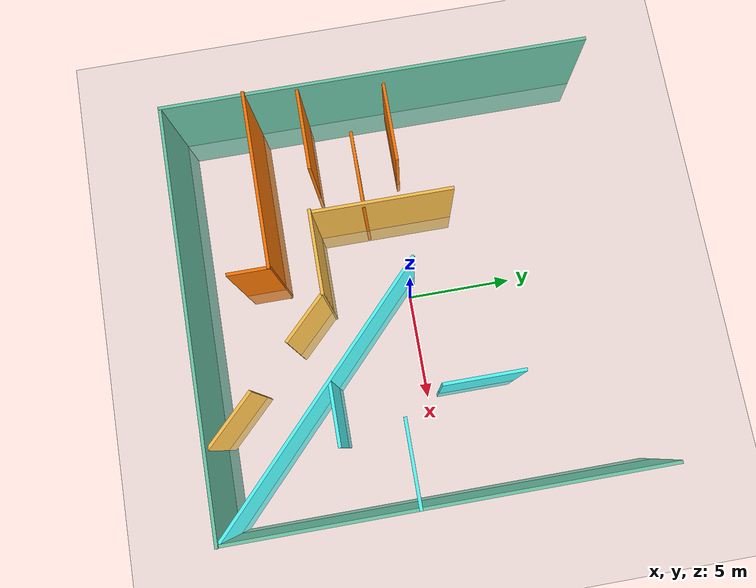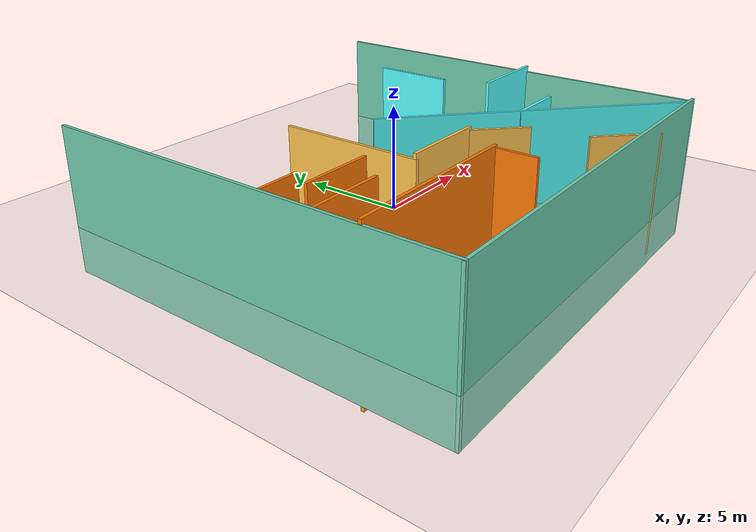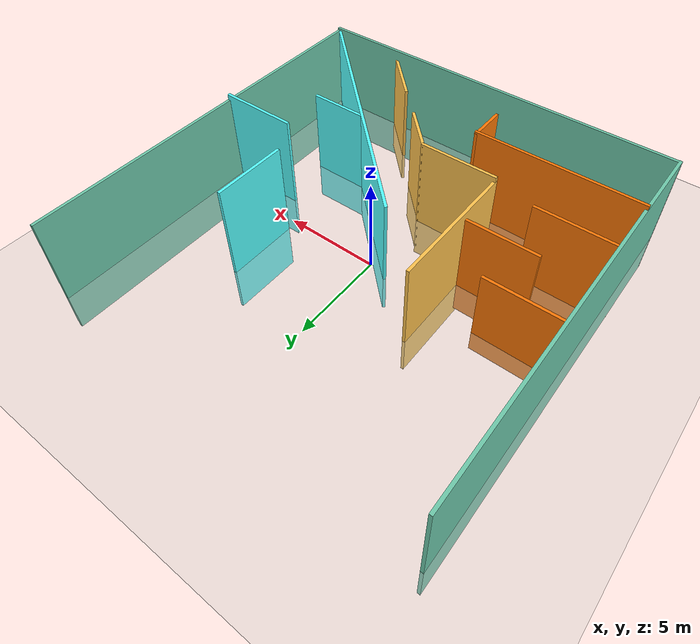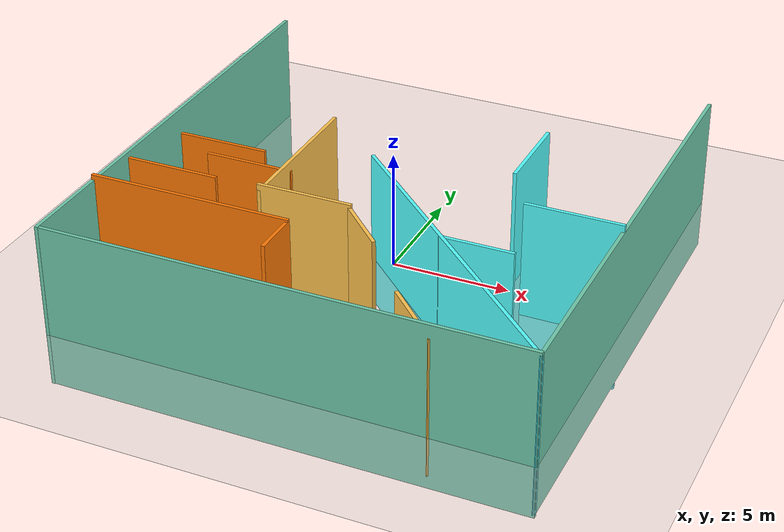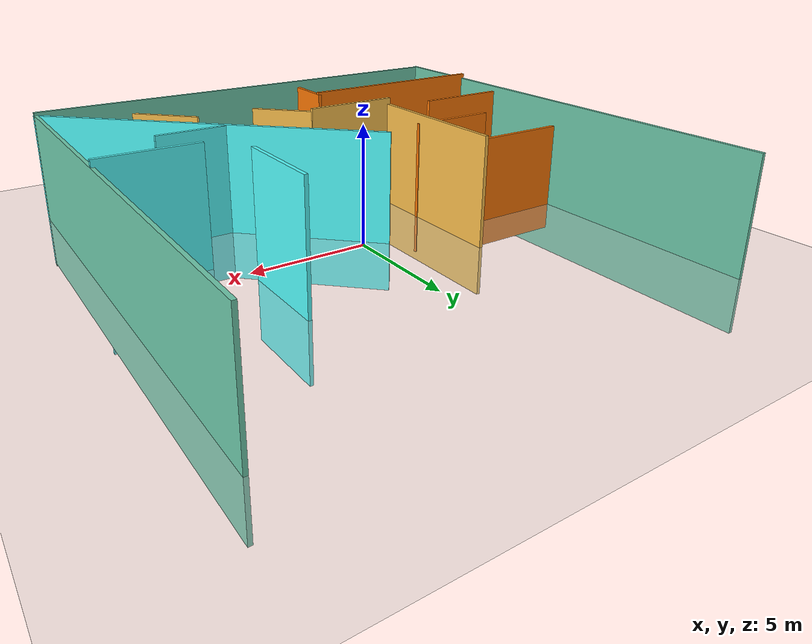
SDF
<sdf version="1.6">
 <world name="default">
  <model name="ground_plane">
   <static>1</static>
   <link name="link">
    <collision name="collision">
     <geometry><plane><normal>0 0 1</normal><size>100 100</size></plane></geometry>
     <surface><friction><ode><mu>100</mu><mu2>50</mu2></ode></friction></surface>
    </collision>
    <visual name="visual">
     <cast_shadows>0</cast_shadows>
     <geometry><plane><normal>0 0 1</normal><size>100 100</size></plane></geometry>
     <material>
      <script><uri>file://media/materials/scripts/gazebo.material</uri><name>Gazebo/Grey</name></script>
     </material>
    </visual>
   </link>
  </model>
  <model name="Maze_House">
   <link name="Wall_34">
    <pose>4.88243 2.43137 0 0 0 -1.5708</pose>
    <inertial>
     <inertia><ixx>0</ixx><ixy>0</ixy><ixz>0</ixz><iyy>0</iyy><iyz>0</iyz><izz>0</izz></inertia>
     <mass>0</mass>
    </inertial>
    <visual name="Wall_34_Visual">
     <pose>0 0 1.25 0 -0 0</pose>
     <geometry><box><size>3.75 0.15 7.57221</size></box></geometry>
     <material>
      <script><uri>file://media/materials/scripts/gazebo.material</uri><name>Gazebo/Grey</name></script>
      <ambient>0.333333 1 1 1</ambient>
      <shader type="pixel"/>
     </material>
    </visual>
    <collision name="Wall_34_Collision">
     <pose>0 0 1.25 0 -0 0</pose>
     <geometry><box><size>3.75 0.15 7.57221</size></box></geometry>
     <surface>
      <friction>
       <ode><mu>1</mu><mu2>1</mu2><fdir1>0 0 0</fdir1><slip1>0</slip1><slip2>0</slip2></ode>
       <torsional>
        <coefficient>1</coefficient>
        <patch_radius>0</patch_radius>
        <surface_radius>0</surface_radius>
        <use_patch_radius>1</use_patch_radius>
        <ode><slip>0</slip></ode>
       </torsional>
      </friction>
      <bounce><restitution_coefficient>0</restitution_coefficient><threshold>1e+06</threshold></bounce>
      <contact>
       <collide_without_contact>0</collide_without_contact>
       <collide_without_contact_bitmask>1</collide_without_contact_bitmask>
       <collide_bitmask>1</collide_bitmask>
       <ode>
        <soft_cfm>0</soft_cfm>
        <soft_erp>0.2</soft_erp>
        <kp>1e+13</kp>
        <kd>1</kd>
        <max_vel>0.01</max_vel>
        <min_depth>0</min_depth>
       </ode>
       <bullet>
        <split_impulse>1</split_impulse>
        <split_impulse_penetration_threshold>-0.01</split_impulse_penetration_threshold>
        <soft_cfm>0</soft_cfm>
        <soft_erp>0.2</soft_erp>
        <kp>1e+13</kp>
        <kd>1</kd>
       </bullet>
      </contact>
     </surface>
    </collision>
   </link>
   <link name="Wall_42">
    <pose>-7.94977 0.433564 0 0 -0 0</pose>
    <inertial>
     <inertia><ixx>0</ixx><ixy>0</ixy><ixz>0</ixz><iyy>0</iyy><iyz>0</iyz><izz>0</izz></inertia>
     <mass>0</mass>
    </inertial>
    <visual name="Wall_42_Visual">
     <pose>0 0 1.25 0 -0 0</pose>
     <geometry><box><size>4 0.15 4.86906</size></box></geometry>
     <material>
      <script><uri>file://media/materials/scripts/gazebo.material</uri><name>Gazebo/Grey</name></script>
      <ambient>0.996078 0.47451 0.0196078 1</ambient>
      <shader type="pixel"/>
     </material>
    </visual>
    <collision name="Wall_42_Collision">
     <pose>0 0 1.25 0 -0 0</pose>
     <geometry><box><size>4 0.15 4.86906</size></box></geometry>
     <surface>
      <friction>
       <ode><mu>1</mu><mu2>1</mu2><fdir1>0 0 0</fdir1><slip1>0</slip1><slip2>0</slip2></ode>
       <torsional>
        <coefficient>1</coefficient>
        <patch_radius>0</patch_radius>
        <surface_radius>0</surface_radius>
        <use_patch_radius>1</use_patch_radius>
        <ode><slip>0</slip></ode>
       </torsional>
      </friction>
      <bounce><restitution_coefficient>0</restitution_coefficient><threshold>1e+06</threshold></bounce>
      <contact>
       <collide_without_contact>0</collide_without_contact>
       <collide_without_contact_bitmask>1</collide_without_contact_bitmask>
       <collide_bitmask>1</collide_bitmask>
       <ode>
        <soft_cfm>0</soft_cfm>
        <soft_erp>0.2</soft_erp>
        <kp>1e+13</kp>
        <kd>1</kd>
        <max_vel>0.01</max_vel>
        <min_depth>0</min_depth>
       </ode>
       <bullet>
        <split_impulse>1</split_impulse>
        <split_impulse_penetration_threshold>-0.01</split_impulse_penetration_threshold>
        <soft_cfm>0</soft_cfm>
        <soft_erp>0.2</soft_erp>
        <kp>1e+13</kp>
        <kd>1</kd>
       </bullet>
      </contact>
     </surface>
    </collision>
   </link>
   <link name="Wall_44">
    <pose>-3.86803 -0.646043 0 0 0 -1.5708</pose>
    <inertial>
     <inertia><ixx>0</ixx><ixy>0</ixy><ixz>0</ixz><iyy>0</iyy><iyz>0</iyz><izz>0</izz></inertia>
     <mass>0</mass>
    </inertial>
    <visual name="Wall_44_Visual">
     <pose>0 0 1.25 0 -0 0</pose>
     <geometry><box><size>6.75 0.15 6.70931</size></box></geometry>
     <material>
      <script><uri>file://media/materials/scripts/gazebo.material</uri><name>Gazebo/Grey</name></script>
      <ambient>1 0.764706 0.305882 1</ambient>
      <shader type="pixel"/>
     </material>
    </visual>
    <collision name="Wall_44_Collision">
     <pose>0 0 1.25 0 -0 0</pose>
     <geometry><box><size>6.75 0.15 6.70931</size></box></geometry>
     <surface>
      <friction>
       <ode><mu>1</mu><mu2>1</mu2><fdir1>0 0 0</fdir1><slip1>0</slip1><slip2>0</slip2></ode>
       <torsional>
        <coefficient>1</coefficient>
        <patch_radius>0</patch_radius>
        <surface_radius>0</surface_radius>
        <use_patch_radius>1</use_patch_radius>
        <ode><slip>0</slip></ode>
       </torsional>
      </friction>
      <bounce><restitution_coefficient>0</restitution_coefficient><threshold>1e+06</threshold></bounce>
      <contact>
       <collide_without_contact>0</collide_without_contact>
       <collide_without_contact_bitmask>1</collide_without_contact_bitmask>
       <collide_bitmask>1</collide_bitmask>
       <ode>
        <soft_cfm>0</soft_cfm>
        <soft_erp>0.2</soft_erp>
        <kp>1e+13</kp>
        <kd>1</kd>
        <max_vel>0.01</max_vel>
        <min_depth>0</min_depth>
       </ode>
       <bullet>
        <split_impulse>1</split_impulse>
        <split_impulse_penetration_threshold>-0.01</split_impulse_penetration_threshold>
        <soft_cfm>0</soft_cfm>
        <soft_erp>0.2</soft_erp>
        <kp>1e+13</kp>
        <kd>1</kd>
       </bullet>
      </contact>
     </surface>
    </collision>
   </link>
   <link name="Wall_46">
    <pose>-5.63157 -1.49524 0 0 -0 3.14159</pose>
    <inertial>
     <inertia><ixx>0</ixx><ixy>0</ixy><ixz>0</ixz><iyy>0</iyy><iyz>0</iyz><izz>0</izz></inertia>
     <mass>0</mass>
    </inertial>
    <visual name="Wall_46_Visual">
     <pose>0 0 1.25 0 -0 0</pose>
     <geometry><box><size>3.75 0.15 5.92378</size></box></geometry>
     <material>
      <script><uri>file://media/materials/scripts/gazebo.material</uri><name>Gazebo/Grey</name></script>
      <ambient>0.996078 0.47451 0.0196078 1</ambient>
      <shader type="pixel"/>
     </material>
    </visual>
    <collision name="Wall_46_Collision">
     <pose>0 0 1.25 0 -0 0</pose>
     <geometry><box><size>3.75 0.15 5.92378</size></box></geometry>
     <surface>
      <friction>
       <ode><mu>1</mu><mu2>1</mu2><fdir1>0 0 0</fdir1><slip1>0</slip1><slip2>0</slip2></ode>
       <torsional>
        <coefficient>1</coefficient>
        <patch_radius>0</patch_radius>
        <surface_radius>0</surface_radius>
        <use_patch_radius>1</use_patch_radius>
        <ode><slip>0</slip></ode>
       </torsional>
      </friction>
      <bounce><restitution_coefficient>0</restitution_coefficient><threshold>1e+06</threshold></bounce>
      <contact>
       <collide_without_contact>0</collide_without_contact>
       <collide_without_contact_bitmask>1</collide_without_contact_bitmask>
       <collide_bitmask>1</collide_bitmask>
       <ode>
        <soft_cfm>0</soft_cfm>
        <soft_erp>0.2</soft_erp>
        <kp>1e+13</kp>
        <kd>1</kd>
        <max_vel>0.01</max_vel>
        <min_depth>0</min_depth>
       </ode>
       <bullet>
        <split_impulse>1</split_impulse>
        <split_impulse_penetration_threshold>-0.01</split_impulse_penetration_threshold>
        <soft_cfm>0</soft_cfm>
        <soft_erp>0.2</soft_erp>
        <kp>1e+13</kp>
        <kd>1</kd>
       </bullet>
      </contact>
     </surface>
    </collision>
   </link>
   <link name="Wall_50">
    <pose>-7.9363 -3.64872 0 0 -0 0</pose>
    <inertial>
     <inertia><ixx>0</ixx><ixy>0</ixy><ixz>0</ixz><iyy>0</iyy><iyz>0</iyz><izz>0</izz></inertia>
     <mass>0</mass>
    </inertial>
    <visual name="Wall_50_Visual">
     <pose>0 0 1.25 0 -0 0</pose>
     <geometry><box><size>4 0.15 6.57139</size></box></geometry>
     <material>
      <script><uri>file://media/materials/scripts/gazebo.material</uri><name>Gazebo/Grey</name></script>
      <ambient>0.996078 0.47451 0.0196078 1</ambient>
      <shader type="pixel"/>
     </material>
    </visual>
    <collision name="Wall_50_Collision">
     <pose>0 0 1.25 0 -0 0</pose>
     <geometry><box><size>4 0.15 6.57139</size></box></geometry>
     <surface>
      <friction>
       <ode><mu>1</mu><mu2>1</mu2><fdir1>0 0 0</fdir1><slip1>0</slip1><slip2>0</slip2></ode>
       <torsional>
        <coefficient>1</coefficient>
        <patch_radius>0</patch_radius>
        <surface_radius>0</surface_radius>
        <use_patch_radius>1</use_patch_radius>
        <ode><slip>0</slip></ode>
       </torsional>
      </friction>
      <bounce><restitution_coefficient>0</restitution_coefficient><threshold>1e+06</threshold></bounce>
      <contact>
       <collide_without_contact>0</collide_without_contact>
       <collide_without_contact_bitmask>1</collide_without_contact_bitmask>
       <collide_bitmask>1</collide_bitmask>
       <ode>
        <soft_cfm>0</soft_cfm>
        <soft_erp>0.2</soft_erp>
        <kp>1e+13</kp>
        <kd>1</kd>
        <max_vel>0.01</max_vel>
        <min_depth>0</min_depth>
       </ode>
       <bullet>
        <split_impulse>1</split_impulse>
        <split_impulse_penetration_threshold>-0.01</split_impulse_penetration_threshold>
        <soft_cfm>0</soft_cfm>
        <soft_erp>0.2</soft_erp>
        <kp>1e+13</kp>
        <kd>1</kd>
       </bullet>
      </contact>
     </surface>
    </collision>
   </link>
   <link name="Wall_52">
    <pose>-1.94303 -3.94604 0 0 -0 0</pose>
    <inertial>
     <inertia><ixx>0</ixx><ixy>0</ixy><ixz>0</ixz><iyy>0</iyy><iyz>0</iyz><izz>0</izz></inertia>
     <mass>0</mass>
    </inertial>
    <visual name="Wall_52_Visual">
     <pose>0 0 1.25 0 -0 0</pose>
     <geometry><box><size>4 0.15 7.23007</size></box></geometry>
     <material>
      <script><uri>file://media/materials/scripts/gazebo.material</uri><name>Gazebo/Grey</name></script>
      <ambient>1 0.764706 0.305882 1</ambient>
      <shader type="pixel"/>
     </material>
    </visual>
    <collision name="Wall_52_Collision">
     <pose>0 0 1.25 0 -0 0</pose>
     <geometry><box><size>4 0.15 7.23007</size></box></geometry>
     <surface>
      <friction>
       <ode><mu>1</mu><mu2>1</mu2><fdir1>0 0 0</fdir1><slip1>0</slip1><slip2>0</slip2></ode>
       <torsional>
        <coefficient>1</coefficient>
        <patch_radius>0</patch_radius>
        <surface_radius>0</surface_radius>
        <use_patch_radius>1</use_patch_radius>
        <ode><slip>0</slip></ode>
       </torsional>
      </friction>
      <bounce><restitution_coefficient>0</restitution_coefficient><threshold>1e+06</threshold></bounce>
      <contact>
       <collide_without_contact>0</collide_without_contact>
       <collide_without_contact_bitmask>1</collide_without_contact_bitmask>
       <collide_bitmask>1</collide_bitmask>
       <ode>
        <soft_cfm>0</soft_cfm>
        <soft_erp>0.2</soft_erp>
        <kp>1e+13</kp>
        <kd>1</kd>
        <max_vel>0.01</max_vel>
        <min_depth>0</min_depth>
       </ode>
       <bullet>
        <split_impulse>1</split_impulse>
        <split_impulse_penetration_threshold>-0.01</split_impulse_penetration_threshold>
        <soft_cfm>0</soft_cfm>
        <soft_erp>0.2</soft_erp>
        <kp>1e+13</kp>
        <kd>1</kd>
       </bullet>
      </contact>
     </surface>
    </collision>
   </link>
   <link name="Wall_54">
    <pose>-5.74783 -6.10984 0 0 -0 0</pose>
    <inertial>
     <inertia><ixx>0</ixx><ixy>0</ixy><ixz>0</ixz><iyy>0</iyy><iyz>0</iyz><izz>0</izz></inertia>
     <mass>0</mass>
    </inertial>
    <visual name="Wall_54_Visual">
     <pose>0 0 1.25 0 -0 0</pose>
     <geometry><box><size>8.5 0.15 7.4864</size></box></geometry>
     <material>
      <script><uri>file://media/materials/scripts/gazebo.material</uri><name>Gazebo/Grey</name></script>
      <ambient>0.996078 0.47451 0.0196078 1</ambient>
      <shader type="pixel"/>
     </material>
    </visual>
    <collision name="Wall_54_Collision">
     <pose>0 0 1.25 0 -0 0</pose>
     <geometry><box><size>8.5 0.15 7.4864</size></box></geometry>
     <surface>
      <friction>
       <ode><mu>1</mu><mu2>1</mu2><fdir1>0 0 0</fdir1><slip1>0</slip1><slip2>0</slip2></ode>
       <torsional>
        <coefficient>1</coefficient>
        <patch_radius>0</patch_radius>
        <surface_radius>0</surface_radius>
        <use_patch_radius>1</use_patch_radius>
        <ode><slip>0</slip></ode>
       </torsional>
      </friction>
      <bounce><restitution_coefficient>0</restitution_coefficient><threshold>1e+06</threshold></bounce>
      <contact>
       <collide_without_contact>0</collide_without_contact>
       <collide_without_contact_bitmask>1</collide_without_contact_bitmask>
       <collide_bitmask>1</collide_bitmask>
       <ode>
        <soft_cfm>0</soft_cfm>
        <soft_erp>0.2</soft_erp>
        <kp>1e+13</kp>
        <kd>1</kd>
        <max_vel>0.01</max_vel>
        <min_depth>0</min_depth>
       </ode>
       <bullet>
        <split_impulse>1</split_impulse>
        <split_impulse_penetration_threshold>-0.01</split_impulse_penetration_threshold>
        <soft_cfm>0</soft_cfm>
        <soft_erp>0.2</soft_erp>
        <kp>1e+13</kp>
        <kd>1</kd>
       </bullet>
      </contact>
     </surface>
    </collision>
   </link>
   <link name="Wall_56">
    <pose>-1.57283 -7.03484 0 0 0 -1.5708</pose>
    <inertial>
     <inertia><ixx>0</ixx><ixy>0</ixy><ixz>0</ixz><iyy>0</iyy><iyz>0</iyz><izz>0</izz></inertia>
     <mass>0</mass>
    </inertial>
    <visual name="Wall_56_Visual">
     <pose>0 0 1.25 0 -0 0</pose>
     <geometry><box><size>2 0.15 7.28883</size></box></geometry>
     <material>
      <script><uri>file://media/materials/scripts/gazebo.material</uri><name>Gazebo/Grey</name></script>
      <ambient>0.996078 0.47451 0.0196078 1</ambient>
      <shader type="pixel"/>
     </material>
    </visual>
    <collision name="Wall_56_Collision">
     <pose>0 0 1.25 0 -0 0</pose>
     <geometry><box><size>2 0.15 7.28883</size></box></geometry>
     <surface>
      <friction>
       <ode><mu>1</mu><mu2>1</mu2><fdir1>0 0 0</fdir1><slip1>0</slip1><slip2>0</slip2></ode>
       <torsional>
        <coefficient>1</coefficient>
        <patch_radius>0</patch_radius>
        <surface_radius>0</surface_radius>
        <use_patch_radius>1</use_patch_radius>
        <ode><slip>0</slip></ode>
       </torsional>
      </friction>
      <bounce><restitution_coefficient>0</restitution_coefficient><threshold>1e+06</threshold></bounce>
      <contact>
       <collide_without_contact>0</collide_without_contact>
       <collide_without_contact_bitmask>1</collide_without_contact_bitmask>
       <collide_bitmask>1</collide_bitmask>
       <ode>
        <soft_cfm>0</soft_cfm>
        <soft_erp>0.2</soft_erp>
        <kp>1e+13</kp>
        <kd>1</kd>
        <max_vel>0.01</max_vel>
        <min_depth>0</min_depth>
       </ode>
       <bullet>
        <split_impulse>1</split_impulse>
        <split_impulse_penetration_threshold>-0.01</split_impulse_penetration_threshold>
        <soft_cfm>0</soft_cfm>
        <soft_erp>0.2</soft_erp>
        <kp>1e+13</kp>
        <kd>1</kd>
       </bullet>
      </contact>
     </surface>
    </collision>
   </link>
   <link name="Wall_58">
    <pose>4.4541 -4.86797 0 0 0 -0.757292</pose>
    <inertial>
     <inertia><ixx>0</ixx><ixy>0</ixy><ixz>0</ixz><iyy>0</iyy><iyz>0</iyz><izz>0</izz></inertia>
     <mass>0</mass>
    </inertial>
    <visual name="Wall_58_Visual">
     <pose>0 0 1.25 0 -0 0</pose>
     <geometry><box><size>15.1642 0.15 6.77058</size></box></geometry>
     <material>
      <script><uri>file://media/materials/scripts/gazebo.material</uri><name>Gazebo/Grey</name></script>
      <ambient>0.333333 1 1 1</ambient>
      <shader type="pixel"/>
     </material>
    </visual>
    <collision name="Wall_58_Collision">
     <pose>0 0 1.25 0 -0 0</pose>
     <geometry><box><size>15.1642 0.15 6.77058</size></box></geometry>
     <surface>
      <friction>
       <ode><mu>1</mu><mu2>1</mu2><fdir1>0 0 0</fdir1><slip1>0</slip1><slip2>0</slip2></ode>
       <torsional>
        <coefficient>1</coefficient>
        <patch_radius>0</patch_radius>
        <surface_radius>0</surface_radius>
        <use_patch_radius>1</use_patch_radius>
        <ode><slip>0</slip></ode>
       </torsional>
      </friction>
      <bounce><restitution_coefficient>0</restitution_coefficient><threshold>1e+06</threshold></bounce>
      <contact>
       <collide_without_contact>0</collide_without_contact>
       <collide_without_contact_bitmask>1</collide_without_contact_bitmask>
       <collide_bitmask>1</collide_bitmask>
       <ode>
        <soft_cfm>0</soft_cfm>
        <soft_erp>0.2</soft_erp>
        <kp>1e+13</kp>
        <kd>1</kd>
        <max_vel>0.01</max_vel>
        <min_depth>0</min_depth>
       </ode>
       <bullet>
        <split_impulse>1</split_impulse>
        <split_impulse_penetration_threshold>-0.01</split_impulse_penetration_threshold>
        <soft_cfm>0</soft_cfm>
        <soft_erp>0.2</soft_erp>
        <kp>1e+13</kp>
        <kd>1</kd>
       </bullet>
      </contact>
     </surface>
    </collision>
   </link>
   <link name="Wall_61">
    <pose>0.889019 -4.89165 0 0 0 -0.785398</pose>
    <inertial>
     <inertia><ixx>0</ixx><ixy>0</ixy><ixz>0</ixz><iyy>0</iyy><iyz>0</iyz><izz>0</izz></inertia>
     <mass>0</mass>
    </inertial>
    <visual name="Wall_61_Visual">
     <pose>0 0 1.25 0 -0 0</pose>
     <geometry><box><size>2.75 0.15 6.96283</size></box></geometry>
     <material>
      <script><uri>file://media/materials/scripts/gazebo.material</uri><name>Gazebo/Grey</name></script>
      <ambient>1 0.764706 0.305882 1</ambient>
      <shader type="pixel"/>
     </material>
    </visual>
    <collision name="Wall_61_Collision">
     <pose>0 0 1.25 0 -0 0</pose>
     <geometry><box><size>2.75 0.15 6.96283</size></box></geometry>
     <surface>
      <friction>
       <ode><mu>1</mu><mu2>1</mu2><fdir1>0 0 0</fdir1><slip1>0</slip1><slip2>0</slip2></ode>
       <torsional>
        <coefficient>1</coefficient>
        <patch_radius>0</patch_radius>
        <surface_radius>0</surface_radius>
        <use_patch_radius>1</use_patch_radius>
        <ode><slip>0</slip></ode>
       </torsional>
      </friction>
      <bounce><restitution_coefficient>0</restitution_coefficient><threshold>1e+06</threshold></bounce>
      <contact>
       <collide_without_contact>0</collide_without_contact>
       <collide_without_contact_bitmask>1</collide_without_contact_bitmask>
       <collide_bitmask>1</collide_bitmask>
       <ode>
        <soft_cfm>0</soft_cfm>
        <soft_erp>0.2</soft_erp>
        <kp>1e+13</kp>
        <kd>1</kd>
        <max_vel>0.01</max_vel>
        <min_depth>0</min_depth>
       </ode>
       <bullet>
        <split_impulse>1</split_impulse>
        <split_impulse_penetration_threshold>-0.01</split_impulse_penetration_threshold>
        <soft_cfm>0</soft_cfm>
        <soft_erp>0.2</soft_erp>
        <kp>1e+13</kp>
        <kd>1</kd>
       </bullet>
      </contact>
     </surface>
    </collision>
   </link>
   <link name="Wall_63">
    <pose>4.77894 -8.94791 0 0 0 -0.785398</pose>
    <inertial>
     <inertia><ixx>0</ixx><ixy>0</ixy><ixz>0</ixz><iyy>0</iyy><iyz>0</iyz><izz>0</izz></inertia>
     <mass>0</mass>
    </inertial>
    <visual name="Wall_63_Visual">
     <pose>0 0 1.25 0 -0 0</pose>
     <geometry><box><size>3.25 0.15 5.90233</size></box></geometry>
     <material>
      <script><uri>file://media/materials/scripts/gazebo.material</uri><name>Gazebo/Grey</name></script>
      <ambient>1 0.764706 0.305882 1</ambient>
      <shader type="pixel"/>
     </material>
    </visual>
    <collision name="Wall_63_Collision">
     <pose>0 0 1.25 0 -0 0</pose>
     <geometry><box><size>3.25 0.15 5.90233</size></box></geometry>
     <surface>
      <friction>
       <ode><mu>1</mu><mu2>1</mu2><fdir1>0 0 0</fdir1><slip1>0</slip1><slip2>0</slip2></ode>
       <torsional>
        <coefficient>1</coefficient>
        <patch_radius>0</patch_radius>
        <surface_radius>0</surface_radius>
        <use_patch_radius>1</use_patch_radius>
        <ode><slip>0</slip></ode>
       </torsional>
      </friction>
      <bounce><restitution_coefficient>0</restitution_coefficient><threshold>1e+06</threshold></bounce>
      <contact>
       <collide_without_contact>0</collide_without_contact>
       <collide_without_contact_bitmask>1</collide_without_contact_bitmask>
       <collide_bitmask>1</collide_bitmask>
       <ode>
        <soft_cfm>0</soft_cfm>
        <soft_erp>0.2</soft_erp>
        <kp>1e+13</kp>
        <kd>1</kd>
        <max_vel>0.01</max_vel>
        <min_depth>0</min_depth>
       </ode>
       <bullet>
        <split_impulse>1</split_impulse>
        <split_impulse_penetration_threshold>-0.01</split_impulse_penetration_threshold>
        <soft_cfm>0</soft_cfm>
        <soft_erp>0.2</soft_erp>
        <kp>1e+13</kp>
        <kd>1</kd>
       </bullet>
      </contact>
     </surface>
    </collision>
   </link>
   <link name="Wall_65">
    <pose>5.26844 -4.26723 0 0 -0 0</pose>
    <inertial>
     <inertia><ixx>0</ixx><ixy>0</ixy><ixz>0</ixz><iyy>0</iyy><iyz>0</iyz><izz>0</izz></inertia>
     <mass>0</mass>
    </inertial>
    <visual name="Wall_65_Visual">
     <pose>0 0 1.25 0 -0 0</pose>
     <geometry><box><size>3 0.15 6.68903</size></box></geometry>
     <material>
      <script><uri>file://media/materials/scripts/gazebo.material</uri><name>Gazebo/Grey</name></script>
      <ambient>0.333333 1 1 1</ambient>
      <shader type="pixel"/>
     </material>
    </visual>
    <collision name="Wall_65_Collision">
     <pose>0 0 1.25 0 -0 0</pose>
     <geometry><box><size>3 0.15 6.68903</size></box></geometry>
     <surface>
      <friction>
       <ode><mu>1</mu><mu2>1</mu2><fdir1>0 0 0</fdir1><slip1>0</slip1><slip2>0</slip2></ode>
       <torsional>
        <coefficient>1</coefficient>
        <patch_radius>0</patch_radius>
        <surface_radius>0</surface_radius>
        <use_patch_radius>1</use_patch_radius>
        <ode><slip>0</slip></ode>
       </torsional>
      </friction>
      <bounce><restitution_coefficient>0</restitution_coefficient><threshold>1e+06</threshold></bounce>
      <contact>
       <collide_without_contact>0</collide_without_contact>
       <collide_without_contact_bitmask>1</collide_without_contact_bitmask>
       <collide_bitmask>1</collide_bitmask>
       <ode>
        <soft_cfm>0</soft_cfm>
        <soft_erp>0.2</soft_erp>
        <kp>1e+13</kp>
        <kd>1</kd>
        <max_vel>0.01</max_vel>
        <min_depth>0</min_depth>
       </ode>
       <bullet>
        <split_impulse>1</split_impulse>
        <split_impulse_penetration_threshold>-0.01</split_impulse_penetration_threshold>
        <soft_cfm>0</soft_cfm>
        <soft_erp>0.2</soft_erp>
        <kp>1e+13</kp>
        <kd>1</kd>
       </bullet>
      </contact>
     </surface>
    </collision>
   </link>
   <link name="Wall_67">
    <pose>7.96422 -1.27109 0 0 -0 3.14159</pose>
    <inertial>
     <inertia><ixx>0</ixx><ixy>0</ixy><ixz>0</ixz><iyy>0</iyy><iyz>0</iyz><izz>0</izz></inertia>
     <mass>0</mass>
    </inertial>
    <visual name="Wall_67_Visual">
     <pose>0 0 1.25 0 -0 0</pose>
     <geometry><box><size>4 0.15 7.37529</size></box></geometry>
     <material>
      <script><uri>file://media/materials/scripts/gazebo.material</uri><name>Gazebo/Grey</name></script>
      <ambient>0.333333 1 1 1</ambient>
      <shader type="pixel"/>
     </material>
    </visual>
    <collision name="Wall_67_Collision">
     <pose>0 0 1.25 0 -0 0</pose>
     <geometry><box><size>4 0.15 7.37529</size></box></geometry>
     <surface>
      <friction>
       <ode><mu>1</mu><mu2>1</mu2><fdir1>0 0 0</fdir1><slip1>0</slip1><slip2>0</slip2></ode>
       <torsional>
        <coefficient>1</coefficient>
        <patch_radius>0</patch_radius>
        <surface_radius>0</surface_radius>
        <use_patch_radius>1</use_patch_radius>
        <ode><slip>0</slip></ode>
       </torsional>
      </friction>
      <bounce><restitution_coefficient>0</restitution_coefficient><threshold>1e+06</threshold></bounce>
      <contact>
       <collide_without_contact>0</collide_without_contact>
       <collide_without_contact_bitmask>1</collide_without_contact_bitmask>
       <collide_bitmask>1</collide_bitmask>
       <ode>
        <soft_cfm>0</soft_cfm>
        <soft_erp>0.2</soft_erp>
        <kp>1e+13</kp>
        <kd>1</kd>
        <max_vel>0.01</max_vel>
        <min_depth>0</min_depth>
       </ode>
       <bullet>
        <split_impulse>1</split_impulse>
        <split_impulse_penetration_threshold>-0.01</split_impulse_penetration_threshold>
        <soft_cfm>0</soft_cfm>
        <soft_erp>0.2</soft_erp>
        <kp>1e+13</kp>
        <kd>1</kd>
       </bullet>
      </contact>
     </surface>
    </collision>
   </link>
   <link name="Wall_7">
    <pose>9.90949 0.024991 0 0 0 -1.5708</pose>
    <inertial>
     <inertia><ixx>0</ixx><ixy>0</ixy><ixz>0</ixz><iyy>0</iyy><iyz>0</iyz><izz>0</izz></inertia>
     <mass>0</mass>
    </inertial>
    <visual name="Wall_7_Visual">
     <pose>0 0 1.25 0 -0 0</pose>
     <geometry><box><size>20.25 0.15 6.80003</size></box></geometry>
     <material>
      <script><uri>file://media/materials/scripts/gazebo.material</uri><name>Gazebo/Grey</name></script>
      <ambient>0.435294 0.796078 0.67451 1</ambient>
      <shader type="pixel"/>
     </material>
    </visual>
    <collision name="Wall_7_Collision">
     <pose>0 0 1.25 0 -0 0</pose>
     <geometry><box><size>20.25 0.15 6.80003</size></box></geometry>
     <surface>
      <friction>
       <ode><mu>1</mu><mu2>1</mu2><fdir1>0 0 0</fdir1><slip1>0</slip1><slip2>0</slip2></ode>
       <torsional>
        <coefficient>1</coefficient>
        <patch_radius>0</patch_radius>
        <surface_radius>0</surface_radius>
        <use_patch_radius>1</use_patch_radius>
        <ode><slip>0</slip></ode>
       </torsional>
      </friction>
      <bounce><restitution_coefficient>0</restitution_coefficient><threshold>1e+06</threshold></bounce>
      <contact>
       <collide_without_contact>0</collide_without_contact>
       <collide_without_contact_bitmask>1</collide_without_contact_bitmask>
       <collide_bitmask>1</collide_bitmask>
       <ode>
        <soft_cfm>0</soft_cfm>
        <soft_erp>0.2</soft_erp>
        <kp>1e+13</kp>
        <kd>1</kd>
        <max_vel>0.01</max_vel>
        <min_depth>0</min_depth>
       </ode>
       <bullet>
        <split_impulse>1</split_impulse>
        <split_impulse_penetration_threshold>-0.01</split_impulse_penetration_threshold>
        <soft_cfm>0</soft_cfm>
        <soft_erp>0.2</soft_erp>
        <kp>1e+13</kp>
        <kd>1</kd>
       </bullet>
      </contact>
     </surface>
    </collision>
   </link>
   <link name="Wall_8">
    <pose>-0.015512 -10.025 0 0 -0 3.14159</pose>
    <inertial>
     <inertia><ixx>0</ixx><ixy>0</ixy><ixz>0</ixz><iyy>0</iyy><iyz>0</iyz><izz>0</izz></inertia>
     <mass>0</mass>
    </inertial>
    <visual name="Wall_8_Visual">
     <pose>0 0 1.25 0 -0 0</pose>
     <geometry><box><size>20 0.15 7.02563</size></box></geometry>
     <material>
      <script><uri>file://media/materials/scripts/gazebo.material</uri><name>Gazebo/Grey</name></script>
      <ambient>0.435 0.796 0.675 1</ambient>
      <shader type="pixel"><normal_map>__default__</normal_map></shader>
      <diffuse>0.7 0.7 0.7 1</diffuse>
      <specular>0.01 0.01 0.01 1</specular>
      <emissive>0 0 0 1</emissive>
     </material>
    </visual>
    <collision name="Wall_8_Collision">
     <pose>0 0 1.25 0 -0 0</pose>
     <geometry><box><size>20 0.15 7.02563</size></box></geometry>
     <surface>
      <friction>
       <ode><mu>1</mu><mu2>1</mu2><fdir1>0 0 0</fdir1><slip1>0</slip1><slip2>0</slip2></ode>
       <torsional>
        <coefficient>1</coefficient>
        <patch_radius>0</patch_radius>
        <surface_radius>0</surface_radius>
        <use_patch_radius>1</use_patch_radius>
        <ode><slip>0</slip></ode>
       </torsional>
      </friction>
      <bounce><restitution_coefficient>0</restitution_coefficient><threshold>1e+06</threshold></bounce>
      <contact>
       <collide_without_contact>0</collide_without_contact>
       <collide_without_contact_bitmask>1</collide_without_contact_bitmask>
       <collide_bitmask>1</collide_bitmask>
       <ode>
        <soft_cfm>0</soft_cfm>
        <soft_erp>0.2</soft_erp>
        <kp>1e+13</kp>
        <kd>1</kd>
        <max_vel>0.01</max_vel>
        <min_depth>0</min_depth>
       </ode>
       <bullet>
        <split_impulse>1</split_impulse>
        <split_impulse_penetration_threshold>-0.01</split_impulse_penetration_threshold>
        <soft_cfm>0</soft_cfm>
        <soft_erp>0.2</soft_erp>
        <kp>1e+13</kp>
        <kd>1</kd>
       </bullet>
      </contact>
     </surface>
    </collision>
   </link>
   <link name="Wall_9">
    <pose>-9.94051 0.024991 0 0 -0 1.5708</pose>
    <inertial>
     <inertia><ixx>0</ixx><ixy>0</ixy><ixz>0</ixz><iyy>0</iyy><iyz>0</iyz><izz>0</izz></inertia>
     <mass>0</mass>
    </inertial>
    <visual name="Wall_9_Visual">
     <pose>0 0 1.25 0 -0 0</pose>
     <geometry><box><size>20.25 0.15 7.05785</size></box></geometry>
     <material>
      <script><uri>file://media/materials/scripts/gazebo.material</uri><name>Gazebo/Grey</name></script>
      <ambient>0.435294 0.796078 0.67451 1</ambient>
      <shader type="pixel"/>
     </material>
    </visual>
    <collision name="Wall_9_Collision">
     <pose>0 0 1.25 0 -0 0</pose>
     <geometry><box><size>20.25 0.15 7.05785</size></box></geometry>
     <surface>
      <friction>
       <ode><mu>1</mu><mu2>1</mu2><fdir1>0 0 0</fdir1><slip1>0</slip1><slip2>0</slip2></ode>
       <torsional>
        <coefficient>1</coefficient>
        <patch_radius>0</patch_radius>
        <surface_radius>0</surface_radius>
        <use_patch_radius>1</use_patch_radius>
        <ode><slip>0</slip></ode>
       </torsional>
      </friction>
      <bounce><restitution_coefficient>0</restitution_coefficient><threshold>1e+06</threshold></bounce>
      <contact>
       <collide_without_contact>0</collide_without_contact>
       <collide_without_contact_bitmask>1</collide_without_contact_bitmask>
       <collide_bitmask>1</collide_bitmask>
       <ode>
        <soft_cfm>0</soft_cfm>
        <soft_erp>0.2</soft_erp>
        <kp>1e+13</kp>
        <kd>1</kd>
        <max_vel>0.01</max_vel>
        <min_depth>0</min_depth>
       </ode>
       <bullet>
        <split_impulse>1</split_impulse>
        <split_impulse_penetration_threshold>-0.01</split_impulse_penetration_threshold>
        <soft_cfm>0</soft_cfm>
        <soft_erp>0.2</soft_erp>
        <kp>1e+13</kp>
        <kd>1</kd>
       </bullet>
      </contact>
     </surface>
    </collision>
   </link>
   <static>1</static>
  </model>
 </world>
</sdf>
